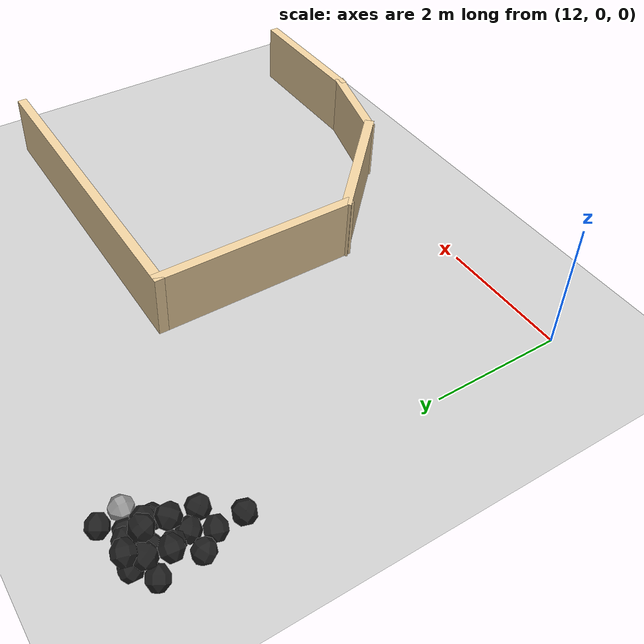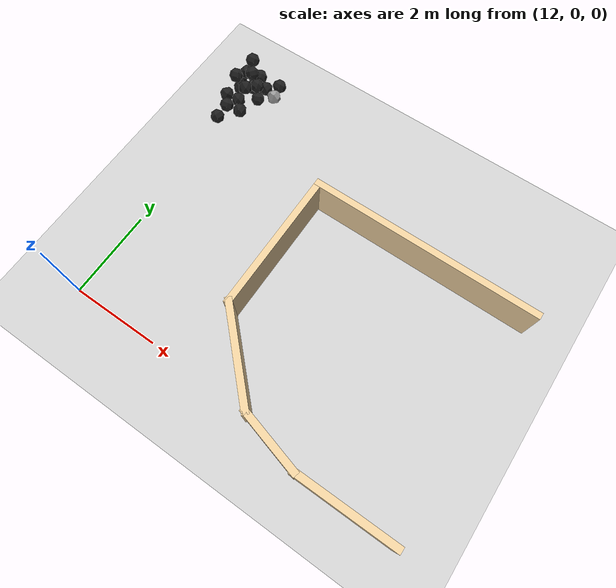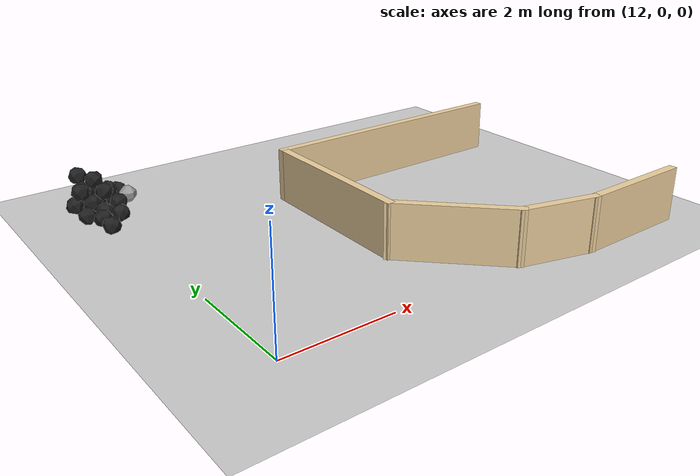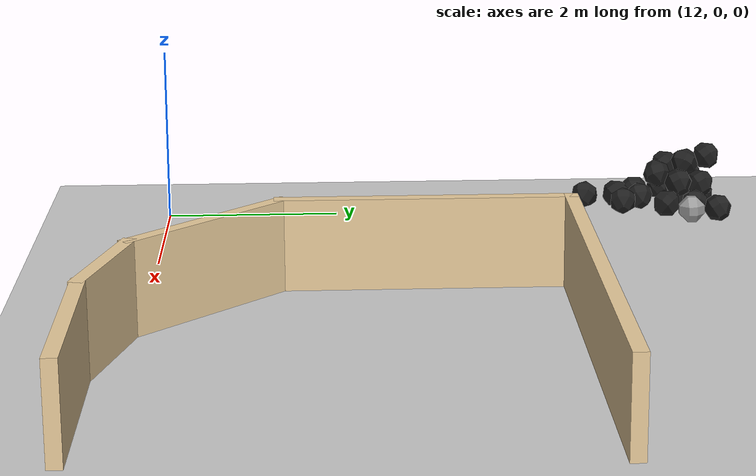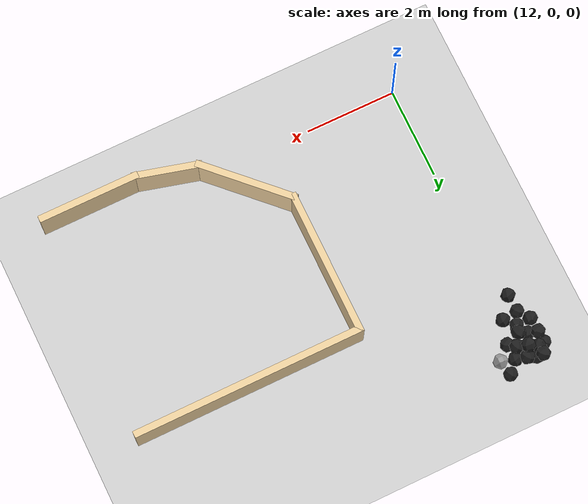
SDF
<sdf version="1.6">
 <world name="default">
  <model name="ground_plane">
   <static>1</static>
   <link name="link">
    <collision name="collision">
     <geometry><plane><normal>0 0 1</normal><size>100 100</size></plane></geometry>
     <surface><friction><ode><mu>100</mu><mu2>50</mu2></ode></friction></surface>
    </collision>
    <visual name="visual">
     <cast_shadows>0</cast_shadows>
     <geometry><plane><normal>0 0 1</normal><size>100 100</size></plane></geometry>
     <material>
      <script><uri>file://media/materials/scripts/gazebo.material</uri><name>Gazebo/Grey</name></script>
     </material>
    </visual>
   </link>
  </model>
  <model name="haoduomiantiaa_3">
   <link name="link_0">
    <inertial>
     <mass>0.2</mass>
     <inertia>
      <ixx>0.166667</ixx>
      <ixy>0</ixy>
      <ixz>0</ixz>
      <iyy>0.166667</iyy>
      <iyz>0</iyz>
      <izz>0.166667</izz>
     </inertia>
    </inertial>
    <visual name="visual">
     <geometry>
      <mesh>
       <uri>/home/oliver/catkin_ws/src/pudong_gazebo/world/stl/haoduomianti.stl</uri>
       <scale>1 1 1</scale>
      </mesh>
     </geometry>
     <material>
      <lighting>1</lighting>
      <script><uri>file://media/materials/scripts/gazebo.material</uri><name>Gazebo/Black</name></script>
      <shader type="pixel"><normal_map>__default__</normal_map></shader>
      <ambient>0.3 0.3 0.3 1</ambient>
      <diffuse>0.7 0.7 0.7 1</diffuse>
      <specular>0.01 0.01 0.01 1</specular>
      <emissive>0 0 0 1</emissive>
     </material>
    </visual>
    <collision name="collision">
     <geometry>
      <mesh>
       <uri>/home/oliver/catkin_ws/src/pudong_gazebo/world/stl/haoduomianti.stl</uri>
       <scale>1 1 1</scale>
      </mesh>
     </geometry>
     <surface>
      <friction>
       <ode><mu>1</mu><mu2>1</mu2><fdir1>0 0 0</fdir1><slip1>0</slip1><slip2>0</slip2></ode>
       <torsional>
        <coefficient>1</coefficient>
        <patch_radius>0</patch_radius>
        <surface_radius>0</surface_radius>
        <use_patch_radius>1</use_patch_radius>
        <ode><slip>0</slip></ode>
       </torsional>
      </friction>
      <bounce><restitution_coefficient>0</restitution_coefficient><threshold>1e+06</threshold></bounce>
      <contact>
       <collide_without_contact>0</collide_without_contact>
       <collide_without_contact_bitmask>1</collide_without_contact_bitmask>
       <collide_bitmask>1</collide_bitmask>
       <ode>
        <soft_cfm>0</soft_cfm>
        <soft_erp>0.2</soft_erp>
        <kp>1e+13</kp>
        <kd>1</kd>
        <max_vel>0.01</max_vel>
        <min_depth>0</min_depth>
       </ode>
       <bullet>
        <split_impulse>1</split_impulse>
        <split_impulse_penetration_threshold>-0.01</split_impulse_penetration_threshold>
        <soft_cfm>0</soft_cfm>
        <soft_erp>0.2</soft_erp>
        <kp>1e+13</kp>
        <kd>1</kd>
       </bullet>
      </contact>
     </surface>
    </collision>
   </link>
   <static>0</static>
   <pose>11.7238 6.55856 -0.072691 0.00034 -0.785225 -2.24933</pose>
  </model>
  <model name="haoduomiantiaa_40">
   <link name="link_0">
    <inertial>
     <mass>0.2</mass>
     <inertia>
      <ixx>0.166667</ixx>
      <ixy>0</ixy>
      <ixz>0</ixz>
      <iyy>0.166667</iyy>
      <iyz>0</iyz>
      <izz>0.166667</izz>
     </inertia>
    </inertial>
    <visual name="visual">
     <geometry>
      <mesh>
       <uri>/home/oliver/catkin_ws/src/pudong_gazebo/world/stl/haoduomianti.stl</uri>
       <scale>1 1 1</scale>
      </mesh>
     </geometry>
     <material>
      <lighting>1</lighting>
      <script><uri>file://media/materials/scripts/gazebo.material</uri><name>Gazebo/Black</name></script>
      <shader type="pixel"><normal_map>__default__</normal_map></shader>
      <ambient>0.3 0.3 0.3 1</ambient>
      <diffuse>0.7 0.7 0.7 1</diffuse>
      <specular>0.01 0.01 0.01 1</specular>
      <emissive>0 0 0 1</emissive>
     </material>
    </visual>
    <collision name="collision">
     <geometry>
      <mesh>
       <uri>/home/oliver/catkin_ws/src/pudong_gazebo/world/stl/haoduomianti.stl</uri>
       <scale>1 1 1</scale>
      </mesh>
     </geometry>
     <surface>
      <friction>
       <ode><mu>1</mu><mu2>1</mu2><fdir1>0 0 0</fdir1><slip1>0</slip1><slip2>0</slip2></ode>
       <torsional>
        <coefficient>1</coefficient>
        <patch_radius>0</patch_radius>
        <surface_radius>0</surface_radius>
        <use_patch_radius>1</use_patch_radius>
        <ode><slip>0</slip></ode>
       </torsional>
      </friction>
      <bounce><restitution_coefficient>0</restitution_coefficient><threshold>1e+06</threshold></bounce>
      <contact>
       <collide_without_contact>0</collide_without_contact>
       <collide_without_contact_bitmask>1</collide_without_contact_bitmask>
       <collide_bitmask>1</collide_bitmask>
       <ode>
        <soft_cfm>0</soft_cfm>
        <soft_erp>0.2</soft_erp>
        <kp>1e+13</kp>
        <kd>1</kd>
        <max_vel>0.01</max_vel>
        <min_depth>0</min_depth>
       </ode>
       <bullet>
        <split_impulse>1</split_impulse>
        <split_impulse_penetration_threshold>-0.01</split_impulse_penetration_threshold>
        <soft_cfm>0</soft_cfm>
        <soft_erp>0.2</soft_erp>
        <kp>1e+13</kp>
        <kd>1</kd>
       </bullet>
      </contact>
     </surface>
    </collision>
   </link>
   <static>0</static>
   <pose>12.5066 6.56667 -0.11673 0.785831 -0.615371 -0.540209</pose>
  </model>
  <model name="haoduomiantiaa_42">
   <link name="link_0">
    <inertial>
     <mass>0.2</mass>
     <inertia>
      <ixx>0.166667</ixx>
      <ixy>0</ixy>
      <ixz>0</ixz>
      <iyy>0.166667</iyy>
      <iyz>0</iyz>
      <izz>0.166667</izz>
     </inertia>
    </inertial>
    <visual name="visual">
     <geometry>
      <mesh>
       <uri>/home/oliver/catkin_ws/src/pudong_gazebo/world/stl/haoduomianti.stl</uri>
       <scale>1 1 1</scale>
      </mesh>
     </geometry>
     <material>
      <lighting>1</lighting>
      <script><uri>file://media/materials/scripts/gazebo.material</uri><name>Gazebo/Black</name></script>
      <shader type="pixel"><normal_map>__default__</normal_map></shader>
      <ambient>0.3 0.3 0.3 1</ambient>
      <diffuse>0.7 0.7 0.7 1</diffuse>
      <specular>0.01 0.01 0.01 1</specular>
      <emissive>0 0 0 1</emissive>
     </material>
    </visual>
    <collision name="collision">
     <geometry>
      <mesh>
       <uri>/home/oliver/catkin_ws/src/pudong_gazebo/world/stl/haoduomianti.stl</uri>
       <scale>1 1 1</scale>
      </mesh>
     </geometry>
     <surface>
      <friction>
       <ode><mu>1</mu><mu2>1</mu2><fdir1>0 0 0</fdir1><slip1>0</slip1><slip2>0</slip2></ode>
       <torsional>
        <coefficient>1</coefficient>
        <patch_radius>0</patch_radius>
        <surface_radius>0</surface_radius>
        <use_patch_radius>1</use_patch_radius>
        <ode><slip>0</slip></ode>
       </torsional>
      </friction>
      <bounce><restitution_coefficient>0</restitution_coefficient><threshold>1e+06</threshold></bounce>
      <contact>
       <collide_without_contact>0</collide_without_contact>
       <collide_without_contact_bitmask>1</collide_without_contact_bitmask>
       <collide_bitmask>1</collide_bitmask>
       <ode>
        <soft_cfm>0</soft_cfm>
        <soft_erp>0.2</soft_erp>
        <kp>1e+13</kp>
        <kd>1</kd>
        <max_vel>0.01</max_vel>
        <min_depth>0</min_depth>
       </ode>
       <bullet>
        <split_impulse>1</split_impulse>
        <split_impulse_penetration_threshold>-0.01</split_impulse_penetration_threshold>
        <soft_cfm>0</soft_cfm>
        <soft_erp>0.2</soft_erp>
        <kp>1e+13</kp>
        <kd>1</kd>
       </bullet>
      </contact>
     </surface>
    </collision>
   </link>
   <static>0</static>
   <pose>11.9104 5.72098 -0.11117 0.889124 -0.66019 1.14177</pose>
  </model>
  <model name="haoduomiantiaa_48">
   <link name="link_0">
    <inertial>
     <mass>0.2</mass>
     <inertia>
      <ixx>0.166667</ixx>
      <ixy>0</ixy>
      <ixz>0</ixz>
      <iyy>0.166667</iyy>
      <iyz>0</iyz>
      <izz>0.166667</izz>
     </inertia>
    </inertial>
    <visual name="visual">
     <geometry>
      <mesh>
       <uri>/home/oliver/catkin_ws/src/pudong_gazebo/world/stl/haoduomianti.stl</uri>
       <scale>1 1 1</scale>
      </mesh>
     </geometry>
     <material>
      <lighting>1</lighting>
      <script><uri>file://media/materials/scripts/gazebo.material</uri><name>Gazebo/Black</name></script>
      <shader type="pixel"><normal_map>__default__</normal_map></shader>
      <ambient>0.3 0.3 0.3 1</ambient>
      <diffuse>0.7 0.7 0.7 1</diffuse>
      <specular>0.01 0.01 0.01 1</specular>
      <emissive>0 0 0 1</emissive>
     </material>
    </visual>
    <collision name="collision">
     <geometry>
      <mesh>
       <uri>/home/oliver/catkin_ws/src/pudong_gazebo/world/stl/haoduomianti.stl</uri>
       <scale>1 1 1</scale>
      </mesh>
     </geometry>
     <surface>
      <friction>
       <ode><mu>1</mu><mu2>1</mu2><fdir1>0 0 0</fdir1><slip1>0</slip1><slip2>0</slip2></ode>
       <torsional>
        <coefficient>1</coefficient>
        <patch_radius>0</patch_radius>
        <surface_radius>0</surface_radius>
        <use_patch_radius>1</use_patch_radius>
        <ode><slip>0</slip></ode>
       </torsional>
      </friction>
      <bounce><restitution_coefficient>0</restitution_coefficient><threshold>1e+06</threshold></bounce>
      <contact>
       <collide_without_contact>0</collide_without_contact>
       <collide_without_contact_bitmask>1</collide_without_contact_bitmask>
       <collide_bitmask>1</collide_bitmask>
       <ode>
        <soft_cfm>0</soft_cfm>
        <soft_erp>0.2</soft_erp>
        <kp>1e+13</kp>
        <kd>1</kd>
        <max_vel>0.01</max_vel>
        <min_depth>0</min_depth>
       </ode>
       <bullet>
        <split_impulse>1</split_impulse>
        <split_impulse_penetration_threshold>-0.01</split_impulse_penetration_threshold>
        <soft_cfm>0</soft_cfm>
        <soft_erp>0.2</soft_erp>
        <kp>1e+13</kp>
        <kd>1</kd>
       </bullet>
      </contact>
     </surface>
    </collision>
   </link>
   <static>0</static>
   <pose>11.694 5.68334 -0.095159 1.20684 -0.751602 -1.29671</pose>
  </model>
  <model name="haoduomiantiaa_61">
   <link name="link_0">
    <inertial>
     <mass>0.2</mass>
     <inertia>
      <ixx>0.166667</ixx>
      <ixy>0</ixy>
      <ixz>0</ixz>
      <iyy>0.166667</iyy>
      <iyz>0</iyz>
      <izz>0.166667</izz>
     </inertia>
    </inertial>
    <visual name="visual">
     <geometry>
      <mesh>
       <uri>/home/oliver/catkin_ws/src/pudong_gazebo/world/stl/haoduomianti.stl</uri>
       <scale>1 1 1</scale>
      </mesh>
     </geometry>
     <material>
      <lighting>1</lighting>
      <script><uri>file://media/materials/scripts/gazebo.material</uri><name>Gazebo/Black</name></script>
      <shader type="pixel"><normal_map>__default__</normal_map></shader>
      <ambient>0.3 0.3 0.3 1</ambient>
      <diffuse>0.7 0.7 0.7 1</diffuse>
      <specular>0.01 0.01 0.01 1</specular>
      <emissive>0 0 0 1</emissive>
     </material>
    </visual>
    <collision name="collision">
     <geometry>
      <mesh>
       <uri>/home/oliver/catkin_ws/src/pudong_gazebo/world/stl/haoduomianti.stl</uri>
       <scale>1 1 1</scale>
      </mesh>
     </geometry>
     <surface>
      <friction>
       <ode><mu>1</mu><mu2>1</mu2><fdir1>0 0 0</fdir1><slip1>0</slip1><slip2>0</slip2></ode>
       <torsional>
        <coefficient>1</coefficient>
        <patch_radius>0</patch_radius>
        <surface_radius>0</surface_radius>
        <use_patch_radius>1</use_patch_radius>
        <ode><slip>0</slip></ode>
       </torsional>
      </friction>
      <bounce><restitution_coefficient>0</restitution_coefficient><threshold>1e+06</threshold></bounce>
      <contact>
       <collide_without_contact>0</collide_without_contact>
       <collide_without_contact_bitmask>1</collide_without_contact_bitmask>
       <collide_bitmask>1</collide_bitmask>
       <ode>
        <soft_cfm>0</soft_cfm>
        <soft_erp>0.2</soft_erp>
        <kp>1e+13</kp>
        <kd>1</kd>
        <max_vel>0.01</max_vel>
        <min_depth>0</min_depth>
       </ode>
       <bullet>
        <split_impulse>1</split_impulse>
        <split_impulse_penetration_threshold>-0.01</split_impulse_penetration_threshold>
        <soft_cfm>0</soft_cfm>
        <soft_erp>0.2</soft_erp>
        <kp>1e+13</kp>
        <kd>1</kd>
       </bullet>
      </contact>
     </surface>
    </collision>
   </link>
   <static>0</static>
   <pose>11.9798 6.18283 -0.116906 0.786053 -0.615528 0.744779</pose>
  </model>
  <model name="haoduomiantiaa_66">
   <link name="link_0">
    <inertial>
     <mass>0.2</mass>
     <inertia>
      <ixx>0.166667</ixx>
      <ixy>0</ixy>
      <ixz>0</ixz>
      <iyy>0.166667</iyy>
      <iyz>0</iyz>
      <izz>0.166667</izz>
     </inertia>
    </inertial>
    <visual name="visual">
     <geometry>
      <mesh>
       <uri>/home/oliver/catkin_ws/src/pudong_gazebo/world/stl/haoduomianti.stl</uri>
       <scale>1 1 1</scale>
      </mesh>
     </geometry>
     <material>
      <lighting>1</lighting>
      <script><uri>file://media/materials/scripts/gazebo.material</uri><name>Gazebo/Black</name></script>
      <shader type="pixel"><normal_map>__default__</normal_map></shader>
      <ambient>0.3 0.3 0.3 1</ambient>
      <diffuse>0.7 0.7 0.7 1</diffuse>
      <specular>0.01 0.01 0.01 1</specular>
      <emissive>0 0 0 1</emissive>
     </material>
    </visual>
    <collision name="collision">
     <geometry>
      <mesh>
       <uri>/home/oliver/catkin_ws/src/pudong_gazebo/world/stl/haoduomianti.stl</uri>
       <scale>1 1 1</scale>
      </mesh>
     </geometry>
     <surface>
      <friction>
       <ode><mu>1</mu><mu2>1</mu2><fdir1>0 0 0</fdir1><slip1>0</slip1><slip2>0</slip2></ode>
       <torsional>
        <coefficient>1</coefficient>
        <patch_radius>0</patch_radius>
        <surface_radius>0</surface_radius>
        <use_patch_radius>1</use_patch_radius>
        <ode><slip>0</slip></ode>
       </torsional>
      </friction>
      <bounce><restitution_coefficient>0</restitution_coefficient><threshold>1e+06</threshold></bounce>
      <contact>
       <collide_without_contact>0</collide_without_contact>
       <collide_without_contact_bitmask>1</collide_without_contact_bitmask>
       <collide_bitmask>1</collide_bitmask>
       <ode>
        <soft_cfm>0</soft_cfm>
        <soft_erp>0.2</soft_erp>
        <kp>1e+13</kp>
        <kd>1</kd>
        <max_vel>0.01</max_vel>
        <min_depth>0</min_depth>
       </ode>
       <bullet>
        <split_impulse>1</split_impulse>
        <split_impulse_penetration_threshold>-0.01</split_impulse_penetration_threshold>
        <soft_cfm>0</soft_cfm>
        <soft_erp>0.2</soft_erp>
        <kp>1e+13</kp>
        <kd>1</kd>
       </bullet>
      </contact>
     </surface>
    </collision>
   </link>
   <static>0</static>
   <pose>12.2662 5.98197 -0.11102 0.672819 -0.663671 -2.06421</pose>
  </model>
  <model name="haoduomiantiaa_90">
   <link name="link_0">
    <inertial>
     <mass>0.2</mass>
     <inertia>
      <ixx>0.166667</ixx>
      <ixy>0</ixy>
      <ixz>0</ixz>
      <iyy>0.166667</iyy>
      <iyz>0</iyz>
      <izz>0.166667</izz>
     </inertia>
    </inertial>
    <visual name="visual">
     <geometry>
      <mesh>
       <uri>/home/oliver/catkin_ws/src/pudong_gazebo/world/stl/haoduomianti.stl</uri>
       <scale>1 1 1</scale>
      </mesh>
     </geometry>
     <material>
      <lighting>1</lighting>
      <script><uri>file://media/materials/scripts/gazebo.material</uri><name>Gazebo/Black</name></script>
      <shader type="pixel"><normal_map>__default__</normal_map></shader>
      <ambient>0.3 0.3 0.3 1</ambient>
      <diffuse>0.7 0.7 0.7 1</diffuse>
      <specular>0.01 0.01 0.01 1</specular>
      <emissive>0 0 0 1</emissive>
     </material>
    </visual>
    <collision name="collision">
     <geometry>
      <mesh>
       <uri>/home/oliver/catkin_ws/src/pudong_gazebo/world/stl/haoduomianti.stl</uri>
       <scale>1 1 1</scale>
      </mesh>
     </geometry>
     <surface>
      <friction>
       <ode><mu>1</mu><mu2>1</mu2><fdir1>0 0 0</fdir1><slip1>0</slip1><slip2>0</slip2></ode>
       <torsional>
        <coefficient>1</coefficient>
        <patch_radius>0</patch_radius>
        <surface_radius>0</surface_radius>
        <use_patch_radius>1</use_patch_radius>
        <ode><slip>0</slip></ode>
       </torsional>
      </friction>
      <bounce><restitution_coefficient>0</restitution_coefficient><threshold>1e+06</threshold></bounce>
      <contact>
       <collide_without_contact>0</collide_without_contact>
       <collide_without_contact_bitmask>1</collide_without_contact_bitmask>
       <collide_bitmask>1</collide_bitmask>
       <ode>
        <soft_cfm>0</soft_cfm>
        <soft_erp>0.2</soft_erp>
        <kp>1e+13</kp>
        <kd>1</kd>
        <max_vel>0.01</max_vel>
        <min_depth>0</min_depth>
       </ode>
       <bullet>
        <split_impulse>1</split_impulse>
        <split_impulse_penetration_threshold>-0.01</split_impulse_penetration_threshold>
        <soft_cfm>0</soft_cfm>
        <soft_erp>0.2</soft_erp>
        <kp>1e+13</kp>
        <kd>1</kd>
       </bullet>
      </contact>
     </surface>
    </collision>
   </link>
   <static>0</static>
   <pose>11.6043 6.2878 -0.107478 0.947579 -0.65681 -0.523981</pose>
  </model>
  <model name="haoduomiantiaa_117">
   <link name="link_0">
    <inertial>
     <mass>0.2</mass>
     <inertia>
      <ixx>0.166667</ixx>
      <ixy>0</ixy>
      <ixz>0</ixz>
      <iyy>0.166667</iyy>
      <iyz>0</iyz>
      <izz>0.166667</izz>
     </inertia>
    </inertial>
    <visual name="visual">
     <geometry>
      <mesh>
       <uri>/home/oliver/catkin_ws/src/pudong_gazebo/world/stl/haoduomianti.stl</uri>
       <scale>1 1 1</scale>
      </mesh>
     </geometry>
     <material>
      <lighting>1</lighting>
      <script><uri>file://media/materials/scripts/gazebo.material</uri><name>Gazebo/Black</name></script>
      <shader type="pixel"><normal_map>__default__</normal_map></shader>
      <ambient>0.3 0.3 0.3 1</ambient>
      <diffuse>0.7 0.7 0.7 1</diffuse>
      <specular>0.01 0.01 0.01 1</specular>
      <emissive>0 0 0 1</emissive>
     </material>
    </visual>
    <collision name="collision">
     <geometry>
      <mesh>
       <uri>/home/oliver/catkin_ws/src/pudong_gazebo/world/stl/haoduomianti.stl</uri>
       <scale>1 1 1</scale>
      </mesh>
     </geometry>
     <surface>
      <friction>
       <ode><mu>1</mu><mu2>1</mu2><fdir1>0 0 0</fdir1><slip1>0</slip1><slip2>0</slip2></ode>
       <torsional>
        <coefficient>1</coefficient>
        <patch_radius>0</patch_radius>
        <surface_radius>0</surface_radius>
        <use_patch_radius>1</use_patch_radius>
        <ode><slip>0</slip></ode>
       </torsional>
      </friction>
      <bounce><restitution_coefficient>0</restitution_coefficient><threshold>1e+06</threshold></bounce>
      <contact>
       <collide_without_contact>0</collide_without_contact>
       <collide_without_contact_bitmask>1</collide_without_contact_bitmask>
       <collide_bitmask>1</collide_bitmask>
       <ode>
        <soft_cfm>0</soft_cfm>
        <soft_erp>0.2</soft_erp>
        <kp>1e+13</kp>
        <kd>1</kd>
        <max_vel>0.01</max_vel>
        <min_depth>0</min_depth>
       </ode>
       <bullet>
        <split_impulse>1</split_impulse>
        <split_impulse_penetration_threshold>-0.01</split_impulse_penetration_threshold>
        <soft_cfm>0</soft_cfm>
        <soft_erp>0.2</soft_erp>
        <kp>1e+13</kp>
        <kd>1</kd>
       </bullet>
      </contact>
     </surface>
    </collision>
   </link>
   <static>0</static>
   <pose>12.074 6.38448 0.079527 0.647253 -0.700962 -0.230945</pose>
  </model>
  <model name="haoduomiantiaa_123">
   <link name="link_0">
    <inertial>
     <mass>0.2</mass>
     <inertia>
      <ixx>0.166667</ixx>
      <ixy>0</ixy>
      <ixz>0</ixz>
      <iyy>0.166667</iyy>
      <iyz>0</iyz>
      <izz>0.166667</izz>
     </inertia>
    </inertial>
    <visual name="visual">
     <geometry>
      <mesh>
       <uri>/home/oliver/catkin_ws/src/pudong_gazebo/world/stl/haoduomianti.stl</uri>
       <scale>1 1 1</scale>
      </mesh>
     </geometry>
     <material>
      <lighting>1</lighting>
      <script><uri>file://media/materials/scripts/gazebo.material</uri><name>Gazebo/Black</name></script>
      <shader type="pixel"><normal_map>__default__</normal_map></shader>
      <ambient>0.3 0.3 0.3 1</ambient>
      <diffuse>0.7 0.7 0.7 1</diffuse>
      <specular>0.01 0.01 0.01 1</specular>
      <emissive>0 0 0 1</emissive>
     </material>
    </visual>
    <collision name="collision">
     <geometry>
      <mesh>
       <uri>/home/oliver/catkin_ws/src/pudong_gazebo/world/stl/haoduomianti.stl</uri>
       <scale>1 1 1</scale>
      </mesh>
     </geometry>
     <surface>
      <friction>
       <ode><mu>1</mu><mu2>1</mu2><fdir1>0 0 0</fdir1><slip1>0</slip1><slip2>0</slip2></ode>
       <torsional>
        <coefficient>1</coefficient>
        <patch_radius>0</patch_radius>
        <surface_radius>0</surface_radius>
        <use_patch_radius>1</use_patch_radius>
        <ode><slip>0</slip></ode>
       </torsional>
      </friction>
      <bounce><restitution_coefficient>0</restitution_coefficient><threshold>1e+06</threshold></bounce>
      <contact>
       <collide_without_contact>0</collide_without_contact>
       <collide_without_contact_bitmask>1</collide_without_contact_bitmask>
       <collide_bitmask>1</collide_bitmask>
       <ode>
        <soft_cfm>0</soft_cfm>
        <soft_erp>0.2</soft_erp>
        <kp>1e+13</kp>
        <kd>1</kd>
        <max_vel>0.01</max_vel>
        <min_depth>0</min_depth>
       </ode>
       <bullet>
        <split_impulse>1</split_impulse>
        <split_impulse_penetration_threshold>-0.01</split_impulse_penetration_threshold>
        <soft_cfm>0</soft_cfm>
        <soft_erp>0.2</soft_erp>
        <kp>1e+13</kp>
        <kd>1</kd>
       </bullet>
      </contact>
     </surface>
    </collision>
   </link>
   <static>0</static>
   <pose>11.6209 6.42316 0.199509 0.677833 0.092912 -0.814268</pose>
  </model>
  <model name="haoduomiantiaa_128">
   <link name="link_0">
    <inertial>
     <mass>0.2</mass>
     <inertia>
      <ixx>0.166667</ixx>
      <ixy>0</ixy>
      <ixz>0</ixz>
      <iyy>0.166667</iyy>
      <iyz>0</iyz>
      <izz>0.166667</izz>
     </inertia>
    </inertial>
    <visual name="visual">
     <geometry>
      <mesh>
       <uri>/home/oliver/catkin_ws/src/pudong_gazebo/world/stl/haoduomianti.stl</uri>
       <scale>1 1 1</scale>
      </mesh>
     </geometry>
     <material>
      <lighting>1</lighting>
      <script><uri>file://media/materials/scripts/gazebo.material</uri><name>Gazebo/Black</name></script>
      <shader type="pixel"><normal_map>__default__</normal_map></shader>
      <ambient>0.3 0.3 0.3 1</ambient>
      <diffuse>0.7 0.7 0.7 1</diffuse>
      <specular>0.01 0.01 0.01 1</specular>
      <emissive>0 0 0 1</emissive>
     </material>
    </visual>
    <collision name="collision">
     <geometry>
      <mesh>
       <uri>/home/oliver/catkin_ws/src/pudong_gazebo/world/stl/haoduomianti.stl</uri>
       <scale>1 1 1</scale>
      </mesh>
     </geometry>
     <surface>
      <friction>
       <ode><mu>1</mu><mu2>1</mu2><fdir1>0 0 0</fdir1><slip1>0</slip1><slip2>0</slip2></ode>
       <torsional>
        <coefficient>1</coefficient>
        <patch_radius>0</patch_radius>
        <surface_radius>0</surface_radius>
        <use_patch_radius>1</use_patch_radius>
        <ode><slip>0</slip></ode>
       </torsional>
      </friction>
      <bounce><restitution_coefficient>0</restitution_coefficient><threshold>1e+06</threshold></bounce>
      <contact>
       <collide_without_contact>0</collide_without_contact>
       <collide_without_contact_bitmask>1</collide_without_contact_bitmask>
       <collide_bitmask>1</collide_bitmask>
       <ode>
        <soft_cfm>0</soft_cfm>
        <soft_erp>0.2</soft_erp>
        <kp>1e+13</kp>
        <kd>1</kd>
        <max_vel>0.01</max_vel>
        <min_depth>0</min_depth>
       </ode>
       <bullet>
        <split_impulse>1</split_impulse>
        <split_impulse_penetration_threshold>-0.01</split_impulse_penetration_threshold>
        <soft_cfm>0</soft_cfm>
        <soft_erp>0.2</soft_erp>
        <kp>1e+13</kp>
        <kd>1</kd>
       </bullet>
      </contact>
     </surface>
    </collision>
   </link>
   <static>0</static>
   <pose>12.1334 5.4744 -0.115403 0.784641 -0.614487 -1.11004</pose>
  </model>
  <model name="haoduomiantiaa_137">
   <link name="link_0">
    <inertial>
     <mass>0.2</mass>
     <inertia>
      <ixx>0.166667</ixx>
      <ixy>0</ixy>
      <ixz>0</ixz>
      <iyy>0.166667</iyy>
      <iyz>0</iyz>
      <izz>0.166667</izz>
     </inertia>
    </inertial>
    <visual name="visual">
     <geometry>
      <mesh>
       <uri>/home/oliver/catkin_ws/src/pudong_gazebo/world/stl/haoduomianti.stl</uri>
       <scale>1 1 1</scale>
      </mesh>
     </geometry>
     <material>
      <lighting>1</lighting>
      <script><uri>file://media/materials/scripts/gazebo.material</uri><name>Gazebo/Black</name></script>
      <shader type="pixel"><normal_map>__default__</normal_map></shader>
      <ambient>0.3 0.3 0.3 1</ambient>
      <diffuse>0.7 0.7 0.7 1</diffuse>
      <specular>0.01 0.01 0.01 1</specular>
      <emissive>0 0 0 1</emissive>
     </material>
    </visual>
    <collision name="collision">
     <geometry>
      <mesh>
       <uri>/home/oliver/catkin_ws/src/pudong_gazebo/world/stl/haoduomianti.stl</uri>
       <scale>1 1 1</scale>
      </mesh>
     </geometry>
     <surface>
      <friction>
       <ode><mu>1</mu><mu2>1</mu2><fdir1>0 0 0</fdir1><slip1>0</slip1><slip2>0</slip2></ode>
       <torsional>
        <coefficient>1</coefficient>
        <patch_radius>0</patch_radius>
        <surface_radius>0</surface_radius>
        <use_patch_radius>1</use_patch_radius>
        <ode><slip>0</slip></ode>
       </torsional>
      </friction>
      <bounce><restitution_coefficient>0</restitution_coefficient><threshold>1e+06</threshold></bounce>
      <contact>
       <collide_without_contact>0</collide_without_contact>
       <collide_without_contact_bitmask>1</collide_without_contact_bitmask>
       <collide_bitmask>1</collide_bitmask>
       <ode>
        <soft_cfm>0</soft_cfm>
        <soft_erp>0.2</soft_erp>
        <kp>1e+13</kp>
        <kd>1</kd>
        <max_vel>0.01</max_vel>
        <min_depth>0</min_depth>
       </ode>
       <bullet>
        <split_impulse>1</split_impulse>
        <split_impulse_penetration_threshold>-0.01</split_impulse_penetration_threshold>
        <soft_cfm>0</soft_cfm>
        <soft_erp>0.2</soft_erp>
        <kp>1e+13</kp>
        <kd>1</kd>
       </bullet>
      </contact>
     </surface>
    </collision>
   </link>
   <static>0</static>
   <pose>12.2763 6.3258 -0.116072 0.785799 -0.615544 0.877852</pose>
  </model>
  <model name="haoduomiantiaa_140">
   <link name="link_0">
    <inertial>
     <mass>0.2</mass>
     <inertia>
      <ixx>0.166667</ixx>
      <ixy>0</ixy>
      <ixz>0</ixz>
      <iyy>0.166667</iyy>
      <iyz>0</iyz>
      <izz>0.166667</izz>
     </inertia>
    </inertial>
    <visual name="visual">
     <geometry>
      <mesh>
       <uri>/home/oliver/catkin_ws/src/pudong_gazebo/world/stl/haoduomianti.stl</uri>
       <scale>1 1 1</scale>
      </mesh>
     </geometry>
     <material>
      <lighting>1</lighting>
      <script><uri>file://media/materials/scripts/gazebo.material</uri><name>Gazebo/Black</name></script>
      <shader type="pixel"><normal_map>__default__</normal_map></shader>
      <ambient>0.3 0.3 0.3 1</ambient>
      <diffuse>0.7 0.7 0.7 1</diffuse>
      <specular>0.01 0.01 0.01 1</specular>
      <emissive>0 0 0 1</emissive>
     </material>
    </visual>
    <collision name="collision">
     <geometry>
      <mesh>
       <uri>/home/oliver/catkin_ws/src/pudong_gazebo/world/stl/haoduomianti.stl</uri>
       <scale>1 1 1</scale>
      </mesh>
     </geometry>
     <surface>
      <friction>
       <ode><mu>1</mu><mu2>1</mu2><fdir1>0 0 0</fdir1><slip1>0</slip1><slip2>0</slip2></ode>
       <torsional>
        <coefficient>1</coefficient>
        <patch_radius>0</patch_radius>
        <surface_radius>0</surface_radius>
        <use_patch_radius>1</use_patch_radius>
        <ode><slip>0</slip></ode>
       </torsional>
      </friction>
      <bounce><restitution_coefficient>0</restitution_coefficient><threshold>1e+06</threshold></bounce>
      <contact>
       <collide_without_contact>0</collide_without_contact>
       <collide_without_contact_bitmask>1</collide_without_contact_bitmask>
       <collide_bitmask>1</collide_bitmask>
       <ode>
        <soft_cfm>0</soft_cfm>
        <soft_erp>0.2</soft_erp>
        <kp>1e+13</kp>
        <kd>1</kd>
        <max_vel>0.01</max_vel>
        <min_depth>0</min_depth>
       </ode>
       <bullet>
        <split_impulse>1</split_impulse>
        <split_impulse_penetration_threshold>-0.01</split_impulse_penetration_threshold>
        <soft_cfm>0</soft_cfm>
        <soft_erp>0.2</soft_erp>
        <kp>1e+13</kp>
        <kd>1</kd>
       </bullet>
      </contact>
     </surface>
    </collision>
   </link>
   <static>0</static>
   <pose>11.6454 5.96931 0.052007 0.719623 0.071022 -0.158631</pose>
  </model>
  <model name="haoduomiantiaa_143">
   <link name="link_0">
    <inertial>
     <mass>0.2</mass>
     <inertia>
      <ixx>0.166667</ixx>
      <ixy>0</ixy>
      <ixz>0</ixz>
      <iyy>0.166667</iyy>
      <iyz>0</iyz>
      <izz>0.166667</izz>
     </inertia>
    </inertial>
    <visual name="visual">
     <geometry>
      <mesh>
       <uri>/home/oliver/catkin_ws/src/pudong_gazebo/world/stl/haoduomianti.stl</uri>
       <scale>1 1 1</scale>
      </mesh>
     </geometry>
     <material>
      <lighting>1</lighting>
      <script><uri>file://media/materials/scripts/gazebo.material</uri><name>Gazebo/Black</name></script>
      <shader type="pixel"><normal_map>__default__</normal_map></shader>
      <ambient>0.3 0.3 0.3 1</ambient>
      <diffuse>0.7 0.7 0.7 1</diffuse>
      <specular>0.01 0.01 0.01 1</specular>
      <emissive>0 0 0 1</emissive>
     </material>
    </visual>
    <collision name="collision">
     <geometry>
      <mesh>
       <uri>/home/oliver/catkin_ws/src/pudong_gazebo/world/stl/haoduomianti.stl</uri>
       <scale>1 1 1</scale>
      </mesh>
     </geometry>
     <surface>
      <friction>
       <ode><mu>1</mu><mu2>1</mu2><fdir1>0 0 0</fdir1><slip1>0</slip1><slip2>0</slip2></ode>
       <torsional>
        <coefficient>1</coefficient>
        <patch_radius>0</patch_radius>
        <surface_radius>0</surface_radius>
        <use_patch_radius>1</use_patch_radius>
        <ode><slip>0</slip></ode>
       </torsional>
      </friction>
      <bounce><restitution_coefficient>0</restitution_coefficient><threshold>1e+06</threshold></bounce>
      <contact>
       <collide_without_contact>0</collide_without_contact>
       <collide_without_contact_bitmask>1</collide_without_contact_bitmask>
       <collide_bitmask>1</collide_bitmask>
       <ode>
        <soft_cfm>0</soft_cfm>
        <soft_erp>0.2</soft_erp>
        <kp>1e+13</kp>
        <kd>1</kd>
        <max_vel>0.01</max_vel>
        <min_depth>0</min_depth>
       </ode>
       <bullet>
        <split_impulse>1</split_impulse>
        <split_impulse_penetration_threshold>-0.01</split_impulse_penetration_threshold>
        <soft_cfm>0</soft_cfm>
        <soft_erp>0.2</soft_erp>
        <kp>1e+13</kp>
        <kd>1</kd>
       </bullet>
      </contact>
     </surface>
    </collision>
   </link>
   <static>0</static>
   <pose>11.7856 5.42992 -0.114758 0.785393 -0.615158 -0.333321</pose>
  </model>
  <model name="haoduomiantiaa_146">
   <link name="link_0">
    <inertial>
     <mass>0.2</mass>
     <inertia>
      <ixx>0.166667</ixx>
      <ixy>0</ixy>
      <ixz>0</ixz>
      <iyy>0.166667</iyy>
      <iyz>0</iyz>
      <izz>0.166667</izz>
     </inertia>
    </inertial>
    <visual name="visual">
     <geometry>
      <mesh>
       <uri>/home/oliver/catkin_ws/src/pudong_gazebo/world/stl/haoduomianti.stl</uri>
       <scale>1 1 1</scale>
      </mesh>
     </geometry>
     <material>
      <lighting>1</lighting>
      <script><uri>file://media/materials/scripts/gazebo.material</uri><name>Gazebo/Black</name></script>
      <shader type="pixel"><normal_map>__default__</normal_map></shader>
      <ambient>0.3 0.3 0.3 1</ambient>
      <diffuse>0.7 0.7 0.7 1</diffuse>
      <specular>0.01 0.01 0.01 1</specular>
      <emissive>0 0 0 1</emissive>
     </material>
    </visual>
    <collision name="collision">
     <geometry>
      <mesh>
       <uri>/home/oliver/catkin_ws/src/pudong_gazebo/world/stl/haoduomianti.stl</uri>
       <scale>1 1 1</scale>
      </mesh>
     </geometry>
     <surface>
      <friction>
       <ode><mu>1</mu><mu2>1</mu2><fdir1>0 0 0</fdir1><slip1>0</slip1><slip2>0</slip2></ode>
       <torsional>
        <coefficient>1</coefficient>
        <patch_radius>0</patch_radius>
        <surface_radius>0</surface_radius>
        <use_patch_radius>1</use_patch_radius>
        <ode><slip>0</slip></ode>
       </torsional>
      </friction>
      <bounce><restitution_coefficient>0</restitution_coefficient><threshold>1e+06</threshold></bounce>
      <contact>
       <collide_without_contact>0</collide_without_contact>
       <collide_without_contact_bitmask>1</collide_without_contact_bitmask>
       <collide_bitmask>1</collide_bitmask>
       <ode>
        <soft_cfm>0</soft_cfm>
        <soft_erp>0.2</soft_erp>
        <kp>1e+13</kp>
        <kd>1</kd>
        <max_vel>0.01</max_vel>
        <min_depth>0</min_depth>
       </ode>
       <bullet>
        <split_impulse>1</split_impulse>
        <split_impulse_penetration_threshold>-0.01</split_impulse_penetration_threshold>
        <soft_cfm>0</soft_cfm>
        <soft_erp>0.2</soft_erp>
        <kp>1e+13</kp>
        <kd>1</kd>
       </bullet>
      </contact>
     </surface>
    </collision>
   </link>
   <static>0</static>
   <pose>12.1554 6.10886 0.121195 0.854996 -0.716046 -2.71623</pose>
  </model>
  <model name="haoduomiantiaa_163">
   <link name="link_0">
    <inertial>
     <mass>0.2</mass>
     <inertia>
      <ixx>0.166667</ixx>
      <ixy>0</ixy>
      <ixz>0</ixz>
      <iyy>0.166667</iyy>
      <iyz>0</iyz>
      <izz>0.166667</izz>
     </inertia>
    </inertial>
    <visual name="visual">
     <geometry>
      <mesh>
       <uri>/home/oliver/catkin_ws/src/pudong_gazebo/world/stl/haoduomianti.stl</uri>
       <scale>1 1 1</scale>
      </mesh>
     </geometry>
     <material>
      <lighting>1</lighting>
      <script><uri>file://media/materials/scripts/gazebo.material</uri><name>Gazebo/Black</name></script>
      <shader type="pixel"><normal_map>__default__</normal_map></shader>
      <ambient>0.3 0.3 0.3 1</ambient>
      <diffuse>0.7 0.7 0.7 1</diffuse>
      <specular>0.01 0.01 0.01 1</specular>
      <emissive>0 0 0 1</emissive>
     </material>
    </visual>
    <collision name="collision">
     <geometry>
      <mesh>
       <uri>/home/oliver/catkin_ws/src/pudong_gazebo/world/stl/haoduomianti.stl</uri>
       <scale>1 1 1</scale>
      </mesh>
     </geometry>
     <surface>
      <friction>
       <ode><mu>1</mu><mu2>1</mu2><fdir1>0 0 0</fdir1><slip1>0</slip1><slip2>0</slip2></ode>
       <torsional>
        <coefficient>1</coefficient>
        <patch_radius>0</patch_radius>
        <surface_radius>0</surface_radius>
        <use_patch_radius>1</use_patch_radius>
        <ode><slip>0</slip></ode>
       </torsional>
      </friction>
      <bounce><restitution_coefficient>0</restitution_coefficient><threshold>1e+06</threshold></bounce>
      <contact>
       <collide_without_contact>0</collide_without_contact>
       <collide_without_contact_bitmask>1</collide_without_contact_bitmask>
       <collide_bitmask>1</collide_bitmask>
       <ode>
        <soft_cfm>0</soft_cfm>
        <soft_erp>0.2</soft_erp>
        <kp>1e+13</kp>
        <kd>1</kd>
        <max_vel>0.01</max_vel>
        <min_depth>0</min_depth>
       </ode>
       <bullet>
        <split_impulse>1</split_impulse>
        <split_impulse_penetration_threshold>-0.01</split_impulse_penetration_threshold>
        <soft_cfm>0</soft_cfm>
        <soft_erp>0.2</soft_erp>
        <kp>1e+13</kp>
        <kd>1</kd>
       </bullet>
      </contact>
     </surface>
    </collision>
   </link>
   <static>0</static>
   <pose>11.9344 5.9275 0.213376 0.469267 -0.887351 -2.74183</pose>
  </model>
  <model name="haoduomiantiaa_184">
   <link name="link_0">
    <inertial>
     <mass>0.2</mass>
     <inertia>
      <ixx>0.166667</ixx>
      <ixy>0</ixy>
      <ixz>0</ixz>
      <iyy>0.166667</iyy>
      <iyz>0</iyz>
      <izz>0.166667</izz>
     </inertia>
    </inertial>
    <visual name="visual">
     <geometry>
      <mesh>
       <uri>/home/oliver/catkin_ws/src/pudong_gazebo/world/stl/haoduomianti.stl</uri>
       <scale>1 1 1</scale>
      </mesh>
     </geometry>
     <material>
      <lighting>1</lighting>
      <script><uri>file://media/materials/scripts/gazebo.material</uri><name>Gazebo/Black</name></script>
      <shader type="pixel"><normal_map>__default__</normal_map></shader>
      <ambient>0.3 0.3 0.3 1</ambient>
      <diffuse>0.7 0.7 0.7 1</diffuse>
      <specular>0.01 0.01 0.01 1</specular>
      <emissive>0 0 0 1</emissive>
     </material>
    </visual>
    <collision name="collision">
     <geometry>
      <mesh>
       <uri>/home/oliver/catkin_ws/src/pudong_gazebo/world/stl/haoduomianti.stl</uri>
       <scale>1 1 1</scale>
      </mesh>
     </geometry>
     <surface>
      <friction>
       <ode><mu>1</mu><mu2>1</mu2><fdir1>0 0 0</fdir1><slip1>0</slip1><slip2>0</slip2></ode>
       <torsional>
        <coefficient>1</coefficient>
        <patch_radius>0</patch_radius>
        <surface_radius>0</surface_radius>
        <use_patch_radius>1</use_patch_radius>
        <ode><slip>0</slip></ode>
       </torsional>
      </friction>
      <bounce><restitution_coefficient>0</restitution_coefficient><threshold>1e+06</threshold></bounce>
      <contact>
       <collide_without_contact>0</collide_without_contact>
       <collide_without_contact_bitmask>1</collide_without_contact_bitmask>
       <collide_bitmask>1</collide_bitmask>
       <ode>
        <soft_cfm>0</soft_cfm>
        <soft_erp>0.2</soft_erp>
        <kp>1e+13</kp>
        <kd>1</kd>
        <max_vel>0.01</max_vel>
        <min_depth>0</min_depth>
       </ode>
       <bullet>
        <split_impulse>1</split_impulse>
        <split_impulse_penetration_threshold>-0.01</split_impulse_penetration_threshold>
        <soft_cfm>0</soft_cfm>
        <soft_erp>0.2</soft_erp>
        <kp>1e+13</kp>
        <kd>1</kd>
       </bullet>
      </contact>
     </surface>
    </collision>
   </link>
   <static>0</static>
   <pose>11.8004 5.04713 -0.115337 0.781876 -0.617105 0.745357</pose>
  </model>
  <model name="haoduomiantiaa_191">
   <link name="link_0">
    <inertial>
     <mass>0.2</mass>
     <inertia>
      <ixx>0.166667</ixx>
      <ixy>0</ixy>
      <ixz>0</ixz>
      <iyy>0.166667</iyy>
      <iyz>0</iyz>
      <izz>0.166667</izz>
     </inertia>
    </inertial>
    <visual name="visual">
     <geometry>
      <mesh>
       <uri>/home/oliver/catkin_ws/src/pudong_gazebo/world/stl/haoduomianti.stl</uri>
       <scale>1 1 1</scale>
      </mesh>
     </geometry>
     <material>
      <lighting>1</lighting>
      <script><uri>file://media/materials/scripts/gazebo.material</uri><name>Gazebo/Black</name></script>
      <shader type="pixel"><normal_map>__default__</normal_map></shader>
      <ambient>0.3 0.3 0.3 1</ambient>
      <diffuse>0.7 0.7 0.7 1</diffuse>
      <specular>0.01 0.01 0.01 1</specular>
      <emissive>0 0 0 1</emissive>
     </material>
    </visual>
    <collision name="collision">
     <geometry>
      <mesh>
       <uri>/home/oliver/catkin_ws/src/pudong_gazebo/world/stl/haoduomianti.stl</uri>
       <scale>1 1 1</scale>
      </mesh>
     </geometry>
     <surface>
      <friction>
       <ode><mu>1</mu><mu2>1</mu2><fdir1>0 0 0</fdir1><slip1>0</slip1><slip2>0</slip2></ode>
       <torsional>
        <coefficient>1</coefficient>
        <patch_radius>0</patch_radius>
        <surface_radius>0</surface_radius>
        <use_patch_radius>1</use_patch_radius>
        <ode><slip>0</slip></ode>
       </torsional>
      </friction>
      <bounce><restitution_coefficient>0</restitution_coefficient><threshold>1e+06</threshold></bounce>
      <contact>
       <collide_without_contact>0</collide_without_contact>
       <collide_without_contact_bitmask>1</collide_without_contact_bitmask>
       <collide_bitmask>1</collide_bitmask>
       <ode>
        <soft_cfm>0</soft_cfm>
        <soft_erp>0.2</soft_erp>
        <kp>1e+13</kp>
        <kd>1</kd>
        <max_vel>0.01</max_vel>
        <min_depth>0</min_depth>
       </ode>
       <bullet>
        <split_impulse>1</split_impulse>
        <split_impulse_penetration_threshold>-0.01</split_impulse_penetration_threshold>
        <soft_cfm>0</soft_cfm>
        <soft_erp>0.2</soft_erp>
        <kp>1e+13</kp>
        <kd>1</kd>
       </bullet>
      </contact>
     </surface>
    </collision>
   </link>
   <static>0</static>
   <pose>11.6204 6.03039 0.21646 0.700558 -0.54334 -0.10025</pose>
  </model>
  <model name="haoduomiantiaa_192">
   <link name="link_0">
    <inertial>
     <mass>0.2</mass>
     <inertia>
      <ixx>0.166667</ixx>
      <ixy>0</ixy>
      <ixz>0</ixz>
      <iyy>0.166667</iyy>
      <iyz>0</iyz>
      <izz>0.166667</izz>
     </inertia>
    </inertial>
    <visual name="visual">
     <geometry>
      <mesh>
       <uri>/home/oliver/catkin_ws/src/pudong_gazebo/world/stl/haoduomianti.stl</uri>
       <scale>1 1 1</scale>
      </mesh>
     </geometry>
     <material>
      <lighting>1</lighting>
      <script><uri>file://media/materials/scripts/gazebo.material</uri><name>Gazebo/Black</name></script>
      <shader type="pixel"><normal_map>__default__</normal_map></shader>
      <ambient>0.3 0.3 0.3 1</ambient>
      <diffuse>0.7 0.7 0.7 1</diffuse>
      <specular>0.01 0.01 0.01 1</specular>
      <emissive>0 0 0 1</emissive>
     </material>
    </visual>
    <collision name="collision">
     <geometry>
      <mesh>
       <uri>/home/oliver/catkin_ws/src/pudong_gazebo/world/stl/haoduomianti.stl</uri>
       <scale>1 1 1</scale>
      </mesh>
     </geometry>
     <surface>
      <friction>
       <ode><mu>1</mu><mu2>1</mu2><fdir1>0 0 0</fdir1><slip1>0</slip1><slip2>0</slip2></ode>
       <torsional>
        <coefficient>1</coefficient>
        <patch_radius>0</patch_radius>
        <surface_radius>0</surface_radius>
        <use_patch_radius>1</use_patch_radius>
        <ode><slip>0</slip></ode>
       </torsional>
      </friction>
      <bounce><restitution_coefficient>0</restitution_coefficient><threshold>1e+06</threshold></bounce>
      <contact>
       <collide_without_contact>0</collide_without_contact>
       <collide_without_contact_bitmask>1</collide_without_contact_bitmask>
       <collide_bitmask>1</collide_bitmask>
       <ode>
        <soft_cfm>0</soft_cfm>
        <soft_erp>0.2</soft_erp>
        <kp>1e+13</kp>
        <kd>1</kd>
        <max_vel>0.01</max_vel>
        <min_depth>0</min_depth>
       </ode>
       <bullet>
        <split_impulse>1</split_impulse>
        <split_impulse_penetration_threshold>-0.01</split_impulse_penetration_threshold>
        <soft_cfm>0</soft_cfm>
        <soft_erp>0.2</soft_erp>
        <kp>1e+13</kp>
        <kd>1</kd>
       </bullet>
      </contact>
     </surface>
    </collision>
   </link>
   <static>0</static>
   <pose>11.7455 6.53071 0.351802 0.73772 -0.488636 -0.27627</pose>
  </model>
  <model name="haoduomiantiaa_196">
   <link name="link_0">
    <inertial>
     <mass>0.2</mass>
     <inertia>
      <ixx>0.166667</ixx>
      <ixy>0</ixy>
      <ixz>0</ixz>
      <iyy>0.166667</iyy>
      <iyz>0</iyz>
      <izz>0.166667</izz>
     </inertia>
    </inertial>
    <visual name="visual">
     <geometry>
      <mesh>
       <uri>/home/oliver/catkin_ws/src/pudong_gazebo/world/stl/haoduomianti.stl</uri>
       <scale>1 1 1</scale>
      </mesh>
     </geometry>
     <material>
      <lighting>1</lighting>
      <script><uri>file://media/materials/scripts/gazebo.material</uri><name>Gazebo/Black</name></script>
      <shader type="pixel"><normal_map>__default__</normal_map></shader>
      <ambient>0.3 0.3 0.3 1</ambient>
      <diffuse>0.7 0.7 0.7 1</diffuse>
      <specular>0.01 0.01 0.01 1</specular>
      <emissive>0 0 0 1</emissive>
     </material>
    </visual>
    <collision name="collision">
     <geometry>
      <mesh>
       <uri>/home/oliver/catkin_ws/src/pudong_gazebo/world/stl/haoduomianti.stl</uri>
       <scale>1 1 1</scale>
      </mesh>
     </geometry>
     <surface>
      <friction>
       <ode><mu>1</mu><mu2>1</mu2><fdir1>0 0 0</fdir1><slip1>0</slip1><slip2>0</slip2></ode>
       <torsional>
        <coefficient>1</coefficient>
        <patch_radius>0</patch_radius>
        <surface_radius>0</surface_radius>
        <use_patch_radius>1</use_patch_radius>
        <ode><slip>0</slip></ode>
       </torsional>
      </friction>
      <bounce><restitution_coefficient>0</restitution_coefficient><threshold>1e+06</threshold></bounce>
      <contact>
       <collide_without_contact>0</collide_without_contact>
       <collide_without_contact_bitmask>1</collide_without_contact_bitmask>
       <collide_bitmask>1</collide_bitmask>
       <ode>
        <soft_cfm>0</soft_cfm>
        <soft_erp>0.2</soft_erp>
        <kp>1e+13</kp>
        <kd>1</kd>
        <max_vel>0.01</max_vel>
        <min_depth>0</min_depth>
       </ode>
       <bullet>
        <split_impulse>1</split_impulse>
        <split_impulse_penetration_threshold>-0.01</split_impulse_penetration_threshold>
        <soft_cfm>0</soft_cfm>
        <soft_erp>0.2</soft_erp>
        <kp>1e+13</kp>
        <kd>1</kd>
       </bullet>
      </contact>
     </surface>
    </collision>
   </link>
   <static>0</static>
   <pose>11.9357 6.25024 0.323221 0.617407 -0.572783 -1.6073</pose>
  </model>
  <model name="haoduomianti">
   <link name="link_0">
    <inertial>
     <mass>0.001</mass>
     <inertia>
      <ixx>0.166667</ixx>
      <ixy>0</ixy>
      <ixz>0</ixz>
      <iyy>0.166667</iyy>
      <iyz>0</iyz>
      <izz>0.166667</izz>
     </inertia>
    </inertial>
    <visual name="visual">
     <geometry>
      <mesh>
       <uri>/home/oliver/catkin_ws/src/pudong_gazebo/world/stl/haoduomianti.stl</uri>
       <scale>1 1 1</scale>
      </mesh>
     </geometry>
     <material>
      <lighting>1</lighting>
      <script><uri>file://media/materials/scripts/gazebo.material</uri><name>Gazebo/Grey</name></script>
      <shader type="pixel"><normal_map>__default__</normal_map></shader>
     </material>
    </visual>
    <collision name="collision">
     <geometry>
      <mesh>
       <uri>/home/oliver/catkin_ws/src/pudong_gazebo/world/stl/haoduomianti.stl</uri>
       <scale>1 1 1</scale>
      </mesh>
     </geometry>
     <surface>
      <friction>
       <ode><mu>1</mu><mu2>1</mu2><fdir1>0 0 0</fdir1><slip1>0</slip1><slip2>0</slip2></ode>
       <torsional>
        <coefficient>1</coefficient>
        <patch_radius>0</patch_radius>
        <surface_radius>0</surface_radius>
        <use_patch_radius>1</use_patch_radius>
        <ode><slip>0</slip></ode>
       </torsional>
      </friction>
      <bounce><restitution_coefficient>0</restitution_coefficient><threshold>1e+06</threshold></bounce>
      <contact>
       <collide_without_contact>0</collide_without_contact>
       <collide_without_contact_bitmask>1</collide_without_contact_bitmask>
       <collide_bitmask>1</collide_bitmask>
       <ode>
        <soft_cfm>0</soft_cfm>
        <soft_erp>0.2</soft_erp>
        <kp>1e+13</kp>
        <kd>1</kd>
        <max_vel>0.01</max_vel>
        <min_depth>0</min_depth>
       </ode>
       <bullet>
        <split_impulse>1</split_impulse>
        <split_impulse_penetration_threshold>-0.01</split_impulse_penetration_threshold>
        <soft_cfm>0</soft_cfm>
        <soft_erp>0.2</soft_erp>
        <kp>1e+13</kp>
        <kd>1</kd>
       </bullet>
      </contact>
     </surface>
    </collision>
   </link>
   <static>0</static>
   <pose>12.4314 6.09215 -0.00472 0.025926 -0.021279 -0.001888</pose>
  </model>
  <model name="Untitle">
   <pose>17.4845 2.02457 0 0 -0 0</pose>
   <link name="Wall_0">
    <collision name="Wall_0_Collision">
     <geometry><box><size>5.15 0.15 1</size></box></geometry>
     <pose>0 0 0.5 0 -0 0</pose>
    </collision>
    <visual name="Wall_0_Visual">
     <pose>0 0 0.5 0 -0 0</pose>
     <geometry><box><size>5.15 0.15 1</size></box></geometry>
     <material>
      <script><uri>file://media/materials/scripts/gazebo.material</uri><name>Gazebo/Grey</name></script>
      <ambient>0.921569 0.807843 0.615686 1</ambient>
     </material>
     <meta><layer>0</layer></meta>
    </visual>
    <pose>0.015513 2.47543 0 0 -0 0</pose>
   </link>
   <link name="Wall_2">
    <collision name="Wall_2_Collision">
     <geometry><box><size>3.25 0.15 1</size></box></geometry>
     <pose>0 0 0.5 0 -0 0</pose>
    </collision>
    <visual name="Wall_2_Visual">
     <pose>0 0 0.5 0 -0 0</pose>
     <geometry><box><size>3.25 0.15 1</size></box></geometry>
     <material>
      <script><uri>file://media/materials/scripts/gazebo.material</uri><name>Gazebo/Grey</name></script>
      <ambient>0.921569 0.807843 0.615686 1</ambient>
     </material>
     <meta><layer>0</layer></meta>
    </visual>
    <pose>-2.48449 0.925427 0 0 -0 -1.5708</pose>
   </link>
   <link name="Wall_3">
    <collision name="Wall_3_Collision">
     <geometry><box><size>2.25 0.15 1</size></box></geometry>
     <pose>0 0 0.5 0 -0 0</pose>
    </collision>
    <visual name="Wall_3_Visual">
     <pose>0 0 0.5 0 -0 0</pose>
     <geometry><box><size>2.25 0.15 1</size></box></geometry>
     <material>
      <script><uri>file://media/materials/scripts/gazebo.material</uri><name>Gazebo/Grey</name></script>
      <ambient>0.921569 0.807843 0.615686 1</ambient>
     </material>
     <meta><layer>0</layer></meta>
    </visual>
    <pose>-1.74199 -1.36707 0 0 -0 -0.785398</pose>
   </link>
   <link name="Wall_4">
    <collision name="Wall_4_Collision">
     <geometry><box><size>1.5 0.15 1</size></box></geometry>
     <pose>0 0 0.5 0 -0 0</pose>
    </collision>
    <visual name="Wall_4_Visual">
     <pose>0 0 0.5 0 -0 0</pose>
     <geometry><box><size>1.5 0.15 1</size></box></geometry>
     <material>
      <script><uri>file://media/materials/scripts/gazebo.material</uri><name>Gazebo/Grey</name></script>
      <ambient>0.921569 0.807843 0.615686 1</ambient>
     </material>
     <meta><layer>0</layer></meta>
    </visual>
    <pose>-0.347487 -2.28407 0 0 -0 -0.261509</pose>
   </link>
   <link name="Wall_5">
    <collision name="Wall_5_Collision">
     <geometry><box><size>2.25 0.15 1</size></box></geometry>
     <pose>0 0 0.5 0 -0 0</pose>
    </collision>
    <visual name="Wall_5_Visual">
     <pose>0 0 0.5 0 -0 0</pose>
     <geometry><box><size>2.25 0.15 1</size></box></geometry>
     <material>
      <script><uri>file://media/materials/scripts/gazebo.material</uri><name>Gazebo/Grey</name></script>
      <ambient>0.921569 0.807843 0.615686 1</ambient>
     </material>
     <meta><layer>0</layer></meta>
    </visual>
    <pose>1.35451 -2.45857 0 0 -0 0</pose>
   </link>
   <static>1</static>
  </model>
 </world>
</sdf>
